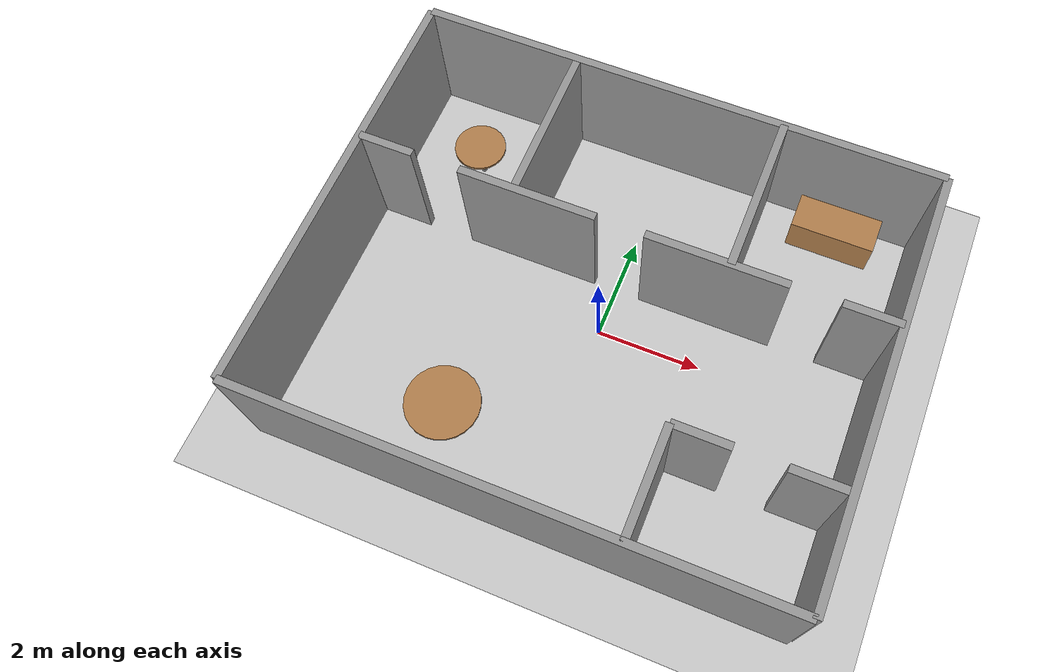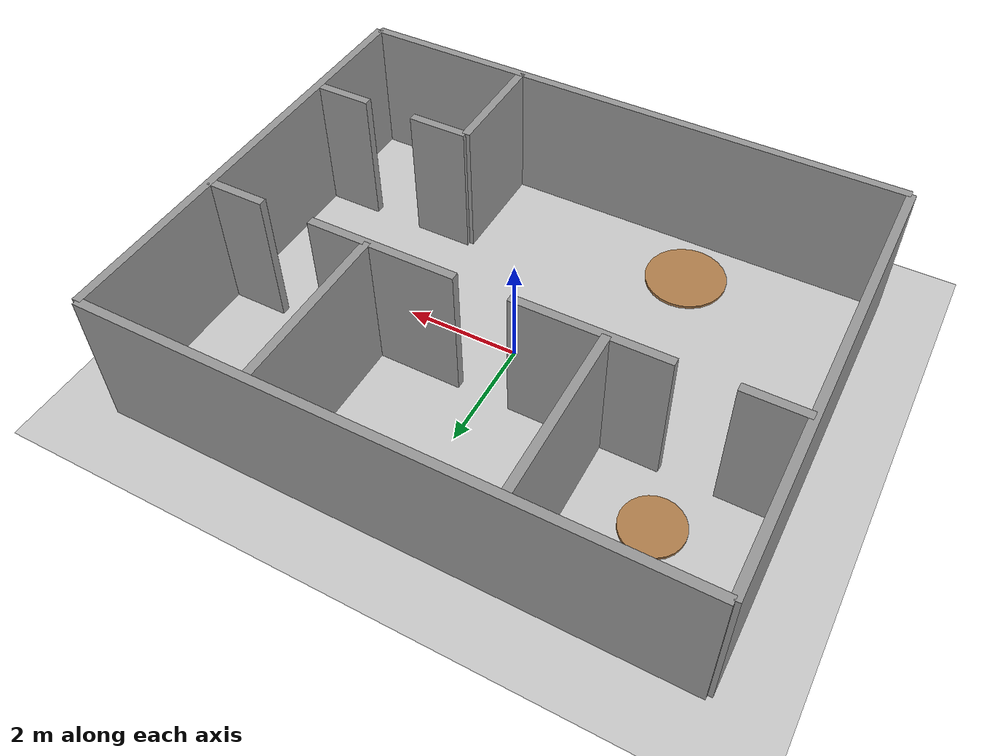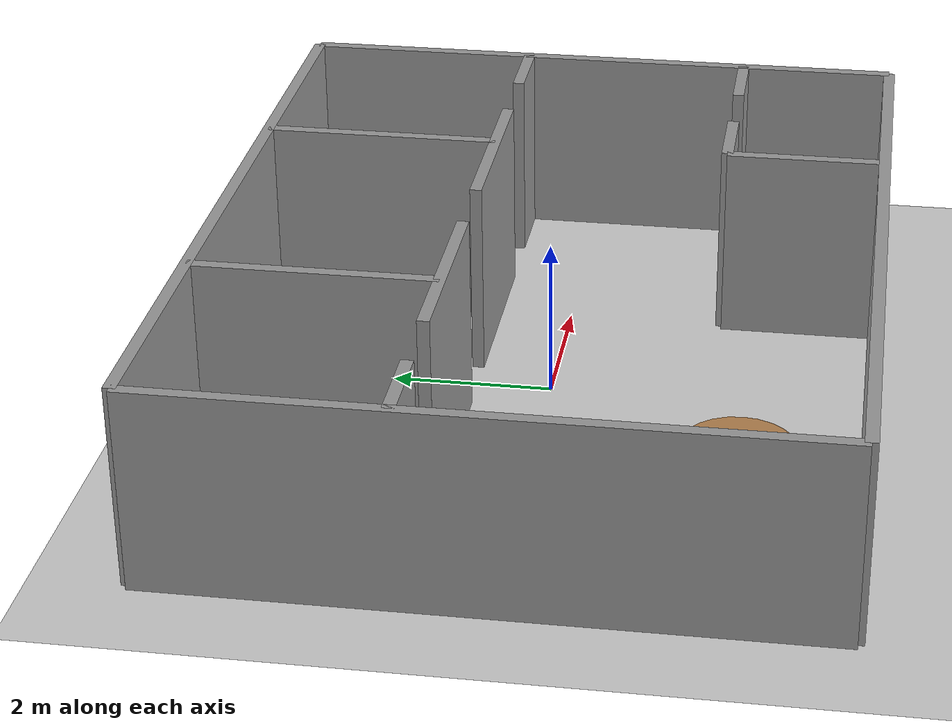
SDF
<?xml version="1.0" ?>
<sdf version="1.6">
  <world name="office_world">
    <include>
      <uri>model://sun</uri>
    </include>
    <include>
      <uri>model://ground_plane</uri>
    </include>
    <include>
      <uri>model://office</uri>
    </include>

    <!-- Exposes /set_entity_state so a ROS node can teleport models at runtime. -->
    <plugin name="gazebo_ros_state" filename="libgazebo_ros_state.so">
      <ros>
        <namespace>/</namespace>
      </ros>
      <update_rate>60.0</update_rate>
    </plugin>
  </world>
</sdf>

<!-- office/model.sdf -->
<sdf version='1.6'>
  <model name='office'>
    <pose frame=''>0 0 0 0 0 0</pose>

    <!-- ===== OUTER BOUNDARY (10 m x 8 m, x: -5..+5, y: -4..+4) ===== -->

    <!-- Top wall: y = +4 -->
    <link name='Wall_0'>
      <collision name='Wall_0_Collision'>
        <geometry>
          <box><size>10 0.15 2.5</size></box>
        </geometry>
        <pose frame=''>0 0 1.25 0 -0 0</pose>
      </collision>
      <visual name='Wall_0_Visual'>
        <pose frame=''>0 0 1.25 0 -0 0</pose>
        <geometry>
          <box><size>10 0.15 2.5</size></box>
        </geometry>
        <material>
          <script>
            <uri>file://media/materials/scripts/gazebo.material</uri>
            <name>Gazebo/Grey</name>
          </script>
          <ambient>1 1 1 1</ambient>
        </material>
      </visual>
      <pose frame=''>0 4 0 0 -0 0</pose>
    </link>

    <!-- Right wall: x = +5 -->
    <link name='Wall_1'>
      <collision name='Wall_1_Collision'>
        <geometry>
          <box><size>8 0.15 2.5</size></box>
        </geometry>
        <pose frame=''>0 0 1.25 0 -0 0</pose>
      </collision>
      <visual name='Wall_1_Visual'>
        <pose frame=''>0 0 1.25 0 -0 0</pose>
        <geometry>
          <box><size>8 0.15 2.5</size></box>
        </geometry>
        <material>
          <script>
            <uri>file://media/materials/scripts/gazebo.material</uri>
            <name>Gazebo/Grey</name>
          </script>
          <ambient>1 1 1 1</ambient>
        </material>
      </visual>
      <pose frame=''>5 0 0 0 0 -1.5708</pose>
    </link>

    <!-- Bottom wall: y = -4 -->
    <link name='Wall_2'>
      <collision name='Wall_2_Collision'>
        <geometry>
          <box><size>10 0.15 2.5</size></box>
        </geometry>
        <pose frame=''>0 0 1.25 0 -0 0</pose>
      </collision>
      <visual name='Wall_2_Visual'>
        <pose frame=''>0 0 1.25 0 -0 0</pose>
        <geometry>
          <box><size>10 0.15 2.5</size></box>
        </geometry>
        <material>
          <script>
            <uri>file://media/materials/scripts/gazebo.material</uri>
            <name>Gazebo/Grey</name>
          </script>
          <ambient>1 1 1 1</ambient>
        </material>
      </visual>
      <pose frame=''>0 -4 0 0 -0 3.14159</pose>
    </link>

    <!-- Left wall: x = -5 -->
    <link name='Wall_3'>
      <collision name='Wall_3_Collision'>
        <geometry>
          <box><size>8 0.15 2.5</size></box>
        </geometry>
        <pose frame=''>0 0 1.25 0 -0 0</pose>
      </collision>
      <visual name='Wall_3_Visual'>
        <pose frame=''>0 0 1.25 0 -0 0</pose>
        <geometry>
          <box><size>8 0.15 2.5</size></box>
        </geometry>
        <material>
          <script>
            <uri>file://media/materials/scripts/gazebo.material</uri>
            <name>Gazebo/Grey</name>
          </script>
          <ambient>1 1 1 1</ambient>
        </material>
      </visual>
      <pose frame=''>-5 0 0 0 -0 1.5708</pose>
    </link>

    <!-- ===== ROOM DIVIDER AT y = +1 ===== =====
         Splits top half (rooms) from bottom half (hallway).
         Three 0.9 m door gaps centred at x = -3.5, 0, +3.5.
    -->

    <!-- Segment 1: x in [-5, -3.95], length 1.05 -->
    <link name='Wall_4'>
      <collision name='Wall_4_Collision'>
        <geometry>
          <box><size>1.05 0.15 2.5</size></box>
        </geometry>
        <pose frame=''>0 0 1.25 0 -0 0</pose>
      </collision>
      <visual name='Wall_4_Visual'>
        <pose frame=''>0 0 1.25 0 -0 0</pose>
        <geometry>
          <box><size>1.05 0.15 2.5</size></box>
        </geometry>
        <material>
          <script>
            <uri>file://media/materials/scripts/gazebo.material</uri>
            <name>Gazebo/Grey</name>
          </script>
          <ambient>1 1 1 1</ambient>
        </material>
      </visual>
      <pose frame=''>-4.475 1 0 0 -0 0</pose>
    </link>

    <!-- Segment 2: x in [-3.05, -0.45], length 2.6 -->
    <link name='Wall_5'>
      <collision name='Wall_5_Collision'>
        <geometry>
          <box><size>2.6 0.15 2.5</size></box>
        </geometry>
        <pose frame=''>0 0 1.25 0 -0 0</pose>
      </collision>
      <visual name='Wall_5_Visual'>
        <pose frame=''>0 0 1.25 0 -0 0</pose>
        <geometry>
          <box><size>2.6 0.15 2.5</size></box>
        </geometry>
        <material>
          <script>
            <uri>file://media/materials/scripts/gazebo.material</uri>
            <name>Gazebo/Grey</name>
          </script>
          <ambient>1 1 1 1</ambient>
        </material>
      </visual>
      <pose frame=''>-1.75 1 0 0 -0 0</pose>
    </link>

    <!-- Segment 3: x in [0.45, 3.05], length 2.6 -->
    <link name='Wall_6'>
      <collision name='Wall_6_Collision'>
        <geometry>
          <box><size>2.6 0.15 2.5</size></box>
        </geometry>
        <pose frame=''>0 0 1.25 0 -0 0</pose>
      </collision>
      <visual name='Wall_6_Visual'>
        <pose frame=''>0 0 1.25 0 -0 0</pose>
        <geometry>
          <box><size>2.6 0.15 2.5</size></box>
        </geometry>
        <material>
          <script>
            <uri>file://media/materials/scripts/gazebo.material</uri>
            <name>Gazebo/Grey</name>
          </script>
          <ambient>1 1 1 1</ambient>
        </material>
      </visual>
      <pose frame=''>1.75 1 0 0 -0 0</pose>
    </link>

    <!-- Segment 4: x in [3.95, 5], length 1.05 -->
    <link name='Wall_7'>
      <collision name='Wall_7_Collision'>
        <geometry>
          <box><size>1.05 0.15 2.5</size></box>
        </geometry>
        <pose frame=''>0 0 1.25 0 -0 0</pose>
      </collision>
      <visual name='Wall_7_Visual'>
        <pose frame=''>0 0 1.25 0 -0 0</pose>
        <geometry>
          <box><size>1.05 0.15 2.5</size></box>
        </geometry>
        <material>
          <script>
            <uri>file://media/materials/scripts/gazebo.material</uri>
            <name>Gazebo/Grey</name>
          </script>
          <ambient>1 1 1 1</ambient>
        </material>
      </visual>
      <pose frame=''>4.475 1 0 0 -0 0</pose>
    </link>

    <!-- ===== ROOM PARTITIONS (vertical at x = -2 and x = +2, y: 1..4) ===== -->

    <!-- Wall between Room A (bedroom) and Room B (living room): x = -2 -->
    <link name='Wall_8'>
      <collision name='Wall_8_Collision'>
        <geometry>
          <box><size>3 0.15 2.5</size></box>
        </geometry>
        <pose frame=''>0 0 1.25 0 -0 0</pose>
      </collision>
      <visual name='Wall_8_Visual'>
        <pose frame=''>0 0 1.25 0 -0 0</pose>
        <geometry>
          <box><size>3 0.15 2.5</size></box>
        </geometry>
        <material>
          <script>
            <uri>file://media/materials/scripts/gazebo.material</uri>
            <name>Gazebo/Grey</name>
          </script>
          <ambient>1 1 1 1</ambient>
        </material>
      </visual>
      <pose frame=''>-2 2.5 0 0 0 1.5708</pose>
    </link>

    <!-- Wall between Room B (living room) and Room C (office): x = +2 -->
    <link name='Wall_9'>
      <collision name='Wall_9_Collision'>
        <geometry>
          <box><size>3 0.15 2.5</size></box>
        </geometry>
        <pose frame=''>0 0 1.25 0 -0 0</pose>
      </collision>
      <visual name='Wall_9_Visual'>
        <pose frame=''>0 0 1.25 0 -0 0</pose>
        <geometry>
          <box><size>3 0.15 2.5</size></box>
        </geometry>
        <material>
          <script>
            <uri>file://media/materials/scripts/gazebo.material</uri>
            <name>Gazebo/Grey</name>
          </script>
          <ambient>1 1 1 1</ambient>
        </material>
      </visual>
      <pose frame=''>2 2.5 0 0 0 1.5708</pose>
    </link>

    <!-- ===== STUDY (bottom-right, x: 2..5, y: -4..-2) =====
         Door 0.9 m wide centred at x = +3.5, facing the hallway.
    -->

    <!-- Study left wall: x = 2, y: -4..-2 -->
    <link name='Wall_10'>
      <collision name='Wall_10_Collision'>
        <geometry>
          <box><size>2 0.15 2.5</size></box>
        </geometry>
        <pose frame=''>0 0 1.25 0 -0 0</pose>
      </collision>
      <visual name='Wall_10_Visual'>
        <pose frame=''>0 0 1.25 0 -0 0</pose>
        <geometry>
          <box><size>2 0.15 2.5</size></box>
        </geometry>
        <material>
          <script>
            <uri>file://media/materials/scripts/gazebo.material</uri>
            <name>Gazebo/Grey</name>
          </script>
          <ambient>1 1 1 1</ambient>
        </material>
      </visual>
      <pose frame=''>2 -3 0 0 0 1.5708</pose>
    </link>

    <!-- Study top wall left segment: y=-2, x in [2, 3.05], length 1.05 -->
    <link name='Wall_11'>
      <collision name='Wall_11_Collision'>
        <geometry>
          <box><size>1.05 0.15 2.5</size></box>
        </geometry>
        <pose frame=''>0 0 1.25 0 -0 0</pose>
      </collision>
      <visual name='Wall_11_Visual'>
        <pose frame=''>0 0 1.25 0 -0 0</pose>
        <geometry>
          <box><size>1.05 0.15 2.5</size></box>
        </geometry>
        <material>
          <script>
            <uri>file://media/materials/scripts/gazebo.material</uri>
            <name>Gazebo/Grey</name>
          </script>
          <ambient>1 1 1 1</ambient>
        </material>
      </visual>
      <pose frame=''>2.525 -2 0 0 -0 0</pose>
    </link>

    <!-- Study top wall right segment: y=-2, x in [3.95, 5], length 1.05 -->
    <link name='Wall_12'>
      <collision name='Wall_12_Collision'>
        <geometry>
          <box><size>1.05 0.15 2.5</size></box>
        </geometry>
        <pose frame=''>0 0 1.25 0 -0 0</pose>
      </collision>
      <visual name='Wall_12_Visual'>
        <pose frame=''>0 0 1.25 0 -0 0</pose>
        <geometry>
          <box><size>1.05 0.15 2.5</size></box>
        </geometry>
        <material>
          <script>
            <uri>file://media/materials/scripts/gazebo.material</uri>
            <name>Gazebo/Grey</name>
          </script>
          <ambient>1 1 1 1</ambient>
        </material>
      </visual>
      <pose frame=''>4.475 -2 0 0 -0 0</pose>
    </link>

    <!-- ===== TABLE 1 — Bedroom (Room A), centre x=-3.5, y=2.5 =====
         Small round wood table, 0.5 m radius, 0.78 m tall column.
    -->
    <link name='Table_1'>
      <collision name='Table_1_Column_Collision'>
        <geometry>
          <cylinder>
            <radius>0.05</radius>
            <length>0.78</length>
          </cylinder>
        </geometry>
        <pose frame=''>0 0 0.39 0 0 0</pose>
      </collision>
      <visual name='Table_1_Column_Visual'>
        <pose frame=''>0 0 0.39 0 0 0</pose>
        <geometry>
          <cylinder>
            <radius>0.05</radius>
            <length>0.78</length>
          </cylinder>
        </geometry>
        <material>
          <script>
            <uri>file://media/materials/scripts/gazebo.material</uri>
            <name>Gazebo/Grey</name>
          </script>
          <ambient>0.6 0.6 0.6 1</ambient>
        </material>
      </visual>
      <collision name='Table_1_Top_Collision'>
        <geometry>
          <cylinder>
            <radius>0.5</radius>
            <length>0.05</length>
          </cylinder>
        </geometry>
        <pose frame=''>0 0 0.805 0 0 0</pose>
      </collision>
      <visual name='Table_1_Top_Visual'>
        <pose frame=''>0 0 0.805 0 0 0</pose>
        <geometry>
          <cylinder>
            <radius>0.5</radius>
            <length>0.05</length>
          </cylinder>
        </geometry>
        <material>
          <script>
            <uri>file://media/materials/scripts/gazebo.material</uri>
            <name>Gazebo/Wood</name>
          </script>
          <ambient>1 1 1 1</ambient>
        </material>
      </visual>
      <pose frame=''>-3.5 2.5 0 0 0 0</pose>
    </link>

    <!-- ===== TABLE 2 — Hallway coffee table at x=-2, y=-2.5 =====
         Lower round table, 0.7 m radius, 0.5 m tall column.
    -->
    <link name='Table_2'>
      <collision name='Table_2_Column_Collision'>
        <geometry>
          <cylinder>
            <radius>0.08</radius>
            <length>0.5</length>
          </cylinder>
        </geometry>
        <pose frame=''>0 0 0.25 0 0 0</pose>
      </collision>
      <visual name='Table_2_Column_Visual'>
        <pose frame=''>0 0 0.25 0 0 0</pose>
        <geometry>
          <cylinder>
            <radius>0.08</radius>
            <length>0.5</length>
          </cylinder>
        </geometry>
        <material>
          <script>
            <uri>file://media/materials/scripts/gazebo.material</uri>
            <name>Gazebo/Grey</name>
          </script>
          <ambient>0.6 0.6 0.6 1</ambient>
        </material>
      </visual>
      <collision name='Table_2_Top_Collision'>
        <geometry>
          <cylinder>
            <radius>0.7</radius>
            <length>0.05</length>
          </cylinder>
        </geometry>
        <pose frame=''>0 0 0.525 0 0 0</pose>
      </collision>
      <visual name='Table_2_Top_Visual'>
        <pose frame=''>0 0 0.525 0 0 0</pose>
        <geometry>
          <cylinder>
            <radius>0.7</radius>
            <length>0.05</length>
          </cylinder>
        </geometry>
        <material>
          <script>
            <uri>file://media/materials/scripts/gazebo.material</uri>
            <name>Gazebo/Wood</name>
          </script>
          <ambient>1 1 1 1</ambient>
        </material>
      </visual>
      <pose frame=''>-2 -2.5 0 0 0 0</pose>
    </link>

    <!-- ===== DESK — Office (Room C), centre x=3.5, y=3.5 =====
         Simple box desk, 1.6 m x 0.7 m x 0.75 m.
    -->
    <link name='Desk_1'>
      <collision name='Desk_1_Collision'>
        <geometry>
          <box><size>1.6 0.7 0.75</size></box>
        </geometry>
        <pose frame=''>0 0 0.375 0 0 0</pose>
      </collision>
      <visual name='Desk_1_Visual'>
        <pose frame=''>0 0 0.375 0 0 0</pose>
        <geometry>
          <box><size>1.6 0.7 0.75</size></box>
        </geometry>
        <material>
          <script>
            <uri>file://media/materials/scripts/gazebo.material</uri>
            <name>Gazebo/Wood</name>
          </script>
          <ambient>1 1 1 1</ambient>
        </material>
      </visual>
      <pose frame=''>3.5 3.5 0 0 0 0</pose>
    </link>

    <static>1</static>
  </model>
</sdf>
